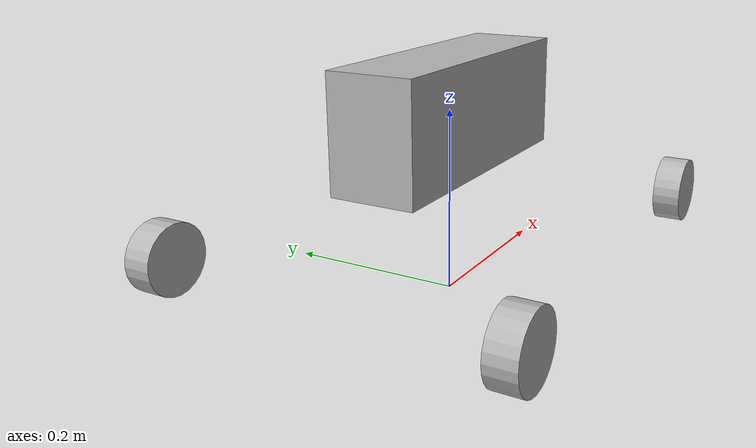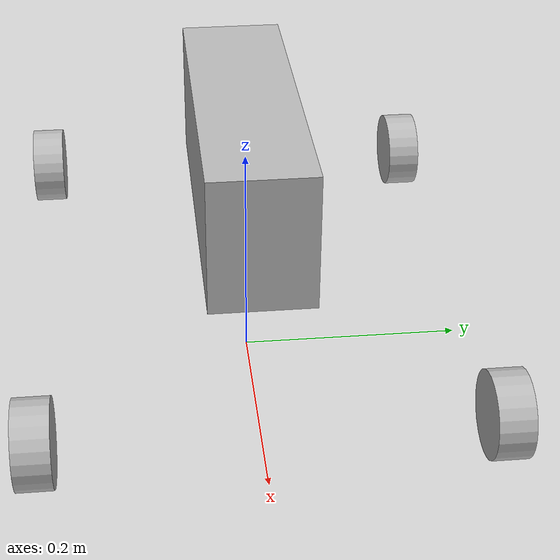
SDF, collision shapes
<sdf version="1.8">
  <model name="MR-Buggy3">
    <pose>0 0 0.08 0 0 0</pose> <!-- Original: 0 0 .04 0 0 0 -->
    <self_collide>false</self_collide>
    <static>false</static>
    <link name="MR-Buggy3/Base">
      <inertial>
        <pose>0 0 0 0 0 0</pose>
        <mass>3.0</mass>
        <inertia>
          <ixx>0.0054</ixx>
          <ixy>0</ixy>
          <ixz>0</ixz>
          <iyy>0.0252</iyy>
          <iyz>0</iyz>
          <izz>0.0252</izz>
        </inertia>
      </inertial>
      <visual name="MR-Buggy3/BaseVisual">
        <pose>0.2742 0 -0.023 -0.036 0 1.5707</pose> <!-- Original: .1371 0 -.0115 -0.018 0 1.5707 -->
        <geometry>
          <mesh>
            <scale>2 2 2</scale>
            <uri>model://MR-Buggy3/meshes/BaseReduced.dae</uri>
          </mesh>
        </geometry>
      </visual>
      <visual name="MR-Buggy3/TopVisual">
        <pose>0.2742 0 -0.023 -0.036 0 1.5707</pose> <!-- Original: .1371 0 -.0115 -0.018 0 1.5707 -->
        <geometry>
          <mesh>
            <scale>2 2 2</scale>
            <uri>model://MR-Buggy3/meshes/TopReduced.dae</uri>
          </mesh>
        </geometry>
      </visual>
      <collision name="MR-Buggy3/BaseCollision">
        <pose>0 0 0.12 0 0 0</pose> <!-- Original: 0 0 .06 0 0 0 -->
        <geometry>
          <box>
            <size>.3 .09 .12</size>
          </box>
        </geometry>
      </collision>
      <sensor name="NPUSim/Camera" type="camera">
        <pose>.16 0 .3 0 0.5 0</pose>
        <always_on>1</always_on>
        <update_rate>10</update_rate>
        <camera>
          <horizontal_fov>1.5</horizontal_fov>
          <image>
            <width>300</width>
            <height>300</height>
            <format>R8G8B8</format>
          </image>
          <clip>
            <near>0.1</near>
            <far>1000</far>
          </clip>
        </camera>
        <topic>NPU/image_sim</topic>
        <enable_metrics>true</enable_metrics>
      </sensor>
    </link>
    <link name="MR-Buggy3/FrontRightWheel">
      <pose relative_to="MR-Buggy3/FrontRightWheelJoint">0 0 0 0 0 0</pose>
      <inertial>
        <mass>.05</mass>
        <inertia>
          <ixx>0.00003331</ixx>
          <ixy>0</ixy>
          <ixz>0</ixz>
          <iyy>0.0000204</iyy>
          <iyz>0</iyz>
          <izz>0.0000204</izz>
        </inertia>
      </inertial>
      <gravity>true</gravity>
      <velocity_decay/>
      <visual name="MR-Buggy3/FrontRightWheelVisual">
        <pose>0 0 0 0 0 0</pose>
        <geometry>
          <mesh>
            <scale>2 2 2</scale>
            <uri>model://MR-Buggy3/meshes/Wheel.dae</uri>
          </mesh>
        </geometry>
      </visual>
      <collision name="MR-Buggy3/FrontRightWheelCollision">
        <pose>0 .015 0 -1.5707 0 0</pose>
        <geometry>
          <cylinder>
            <length>0.03</length>
            <radius>0.0365</radius>
          </cylinder>
        </geometry>
        <surface>
          <friction>
            <ode>
              <mu>0.5</mu>
              <mu2>1.0</mu2>
              <fdir1>0 0 1</fdir1>
            </ode>
          </friction>
        </surface>
      </collision>
    </link>
    <link name="MR-Buggy3/FrontRightWheelSteering">
      <pose relative_to="MR-Buggy3/FrontRightWheelSteeringJoint">0 0 0 0 0 0</pose>
      <inertial>
        <mass>0.005</mass>
        <inertia>
          <ixx>0.0000018</ixx>
          <iyy>0.0000018</iyy>
          <izz>0.0000018</izz>
        </inertia>
      </inertial>
    </link>
    <link name="MR-Buggy3/FrontLeftWheel">
      <pose relative_to="MR-Buggy3/FrontLeftWheelJoint">0 0 0 0 0 0</pose>
      <inertial>
        <mass>.05</mass>
        <inertia>
          <ixx>0.00003331</ixx>
          <ixy>0</ixy>
          <ixz>0</ixz>
          <iyy>0.0000204</iyy>
          <iyz>0</iyz>
          <izz>0.0000204</izz>
        </inertia>
      </inertial>
      <gravity>true</gravity>
      <velocity_decay/>
      <visual name="MR-Buggy3/FrontLeftWheelVisual">
        <pose>0 0 0 0 0 3.14159</pose>
        <geometry>
          <mesh>
            <scale>2 2 2</scale>
            <uri>model://MR-Buggy3/meshes/Wheel.dae</uri>
          </mesh>
        </geometry>
      </visual>
      <collision name="MR-Buggy3/FrontLeftWheelCollision">
        <pose>0 -.015 0 -1.5707 0 0</pose>
        <geometry>
          <cylinder>
            <length>0.03</length>
            <radius>0.0365</radius>
          </cylinder>
        </geometry>
        <surface>
          <friction>
            <ode>
              <mu>0.5</mu>
              <mu2>1.0</mu2>
              <fdir1>0 0 1</fdir1>
            </ode>
          </friction>
        </surface>
      </collision>
    </link>
    <link name="MR-Buggy3/FrontLeftWheelSteering">
      <pose relative_to="MR-Buggy3/FrontLeftWheelSteeringJoint">0 0 0 0 0 0</pose>
      <inertial>
        <mass>0.005</mass>
        <inertia>
          <ixx>0.0000018</ixx>
          <iyy>0.0000018</iyy>
          <izz>0.0000018</izz>
        </inertia>
      </inertial>
    </link>
    <link name="MR-Buggy3/RearRightWheel">
      <pose relative_to="MR-Buggy3/RearRightWheelJoint">0 0 0 0 0 0</pose>
      <inertial>
        <mass>.05</mass>
        <inertia>
          <ixx>0.00003331</ixx>
          <ixy>0</ixy>
          <ixz>0</ixz>
          <iyy>0.0000204</iyy>
          <iyz>0</iyz>
          <izz>0.0000204</izz>
        </inertia>
      </inertial>
      <gravity>true</gravity>
      <velocity_decay/>
      <visual name="MR-Buggy3/RearRightWheelVisual">
        <pose>0 0 0 0 0 0</pose>
        <geometry>
          <mesh>
            <scale>2 2 2</scale>
            <uri>model://MR-Buggy3/meshes/Wheel.dae</uri>
          </mesh>
        </geometry>
      </visual>
      <collision name="MR-Buggy3/RearRightWheelCollision">
        <pose>0 .015 0 -1.5707 0 0</pose>
        <geometry>
          <cylinder>
            <length>0.03</length>
            <radius>0.0365</radius>
          </cylinder>
        </geometry>
        <surface>
          <friction>
            <ode>
              <mu>0.5</mu>
              <mu2>1.0</mu2>
              <fdir1>0 0 1</fdir1>
            </ode>
          </friction>
        </surface>
      </collision>
    </link>
    <link name="MR-Buggy3/RearLeftWheel">
      <pose relative_to="MR-Buggy3/RearLeftWheelJoint">0 0 0 0 0 0</pose>
      <inertial>
        <mass>.05</mass>
        <inertia>
          <ixx>0.00003331</ixx>
          <ixy>0</ixy>
          <ixz>0</ixz>
          <iyy>0.0000204</iyy>
          <iyz>0</iyz>
          <izz>0.0000204</izz>
        </inertia>
      </inertial>
      <gravity>true</gravity>
      <velocity_decay/>
      <visual name="MR-Buggy3/RearLeftWheelVisual">
        <pose>0 0 0 0 0 3.14159</pose>
        <geometry>
          <mesh>
            <scale>2 2 2</scale>
            <uri>model://MR-Buggy3/meshes/Wheel.dae</uri>
          </mesh>
        </geometry>
      </visual>
      <collision name="MR-Buggy3/RearLeftWheelCollision">
        <pose>0 -.015 0 -1.5707 0 0</pose>
        <geometry>
          <cylinder>
            <length>0.03</length>
            <radius>0.0365</radius>
          </cylinder>
        </geometry>
        <surface>
          <friction>
            <ode>
              <mu>0.5</mu>
              <mu2>1.0</mu2>
              <fdir1>0 0 1</fdir1>
            </ode>
          </friction>
        </surface>
      </collision>
    </link>
    <joint name="MR-Buggy3/FrontRightWheelSteeringJoint" type="revolute">
      <parent>MR-Buggy3/Base</parent>
      <child>MR-Buggy3/FrontRightWheelSteering</child>
      <pose relative_to="MR-Buggy3/Base">0.224 -0.2 0 0 0 0</pose>
      <axis>
        <xyz>0 0 1</xyz>
        <limit>
          <lower>-0.6</lower>
          <upper>0.6</upper>
          <velocity>1.0</velocity>
          <effort>25</effort>
        </limit>
        <use_parent_model_frame>1</use_parent_model_frame>
      </axis>
    </joint>
    <joint name="MR-Buggy3/FrontRightWheelJoint" type="revolute">
      <parent>MR-Buggy3/FrontRightWheelSteering</parent>
      <child>MR-Buggy3/FrontRightWheel</child>
      <pose relative_to="MR-Buggy3/FrontRightWheelSteeringJoint">0 0 0 0 0 0</pose>
      <axis>
        <xyz>0 1 0</xyz>
        <limit>
          <lower>-1.79769e+308</lower>
          <upper>1.79769e+308</upper>
        </limit>
        <dynamics>
          <spring_reference>0</spring_reference>
          <spring_stiffness>0</spring_stiffness>
        </dynamics>
        <use_parent_model_frame>1</use_parent_model_frame>
      </axis>
    </joint>
    <joint name="MR-Buggy3/FrontLeftWheelSteeringJoint" type="revolute">
      <parent>MR-Buggy3/Base</parent>
      <child>MR-Buggy3/FrontLeftWheelSteering</child>
      <pose relative_to="MR-Buggy3/Base">0.224 0.2 0 0 0 0</pose>
      <axis>
        <xyz>0 0 1</xyz>
        <limit>
          <lower>-0.6</lower>
          <upper>0.6</upper>
          <velocity>1.0</velocity>
          <effort>25</effort>
        </limit>
        <use_parent_model_frame>1</use_parent_model_frame>
      </axis>
    </joint>
    <joint name="MR-Buggy3/FrontLeftWheelJoint" type="revolute">
      <parent>MR-Buggy3/FrontLeftWheelSteering</parent>
      <child>MR-Buggy3/FrontLeftWheel</child>
      <pose relative_to="MR-Buggy3/FrontLeftWheelSteeringJoint">0 0 0 0 0 0</pose>
      <axis>
        <xyz>0 1 0</xyz>
        <limit>
          <lower>-1.79769e+308</lower>
          <upper>1.79769e+308</upper>
        </limit>
        <dynamics>
          <spring_reference>0</spring_reference>
          <spring_stiffness>0</spring_stiffness>
        </dynamics>
        <use_parent_model_frame>1</use_parent_model_frame>
      </axis>
    </joint>
    <joint name="MR-Buggy3/RearRightWheelJoint" type="revolute">
      <parent>MR-Buggy3/Base</parent>
      <child>MR-Buggy3/RearRightWheel</child>
      <pose relative_to="MR-Buggy3/Base">-0.227 -0.2 0 0 0 0</pose>
      <axis>
        <xyz>0 1 0</xyz>
        <limit>
          <lower>-1.79769e+308</lower>
          <upper>1.79769e+308</upper>
        </limit>
        <dynamics>
          <spring_reference>0</spring_reference>
          <spring_stiffness>0</spring_stiffness>
        </dynamics>
        <use_parent_model_frame>1</use_parent_model_frame>
      </axis>
    </joint>
    <joint name="MR-Buggy3/RearLeftWheelJoint" type="revolute">
      <parent>MR-Buggy3/Base</parent>
      <child>MR-Buggy3/RearLeftWheel</child>
      <pose relative_to="MR-Buggy3/Base">-0.227 0.2 0 0 0 0</pose>
      <axis>
        <xyz>0 1 0</xyz>
        <limit>
          <lower>-1.79769e+308</lower>
          <upper>1.79769e+308</upper>
        </limit>
        <dynamics>
          <spring_reference>0</spring_reference>
          <spring_stiffness>0</spring_stiffness>
        </dynamics>
        <use_parent_model_frame>1</use_parent_model_frame>
      </axis>
    </joint>
    <plugin
      filename="ignition-gazebo-ackermann-steering-system"
      name="ignition::gazebo::systems::AckermannSteering">
      <left_joint>MR-Buggy3/FrontLeftWheelJoint</left_joint>
      <left_joint>MR-Buggy3/RearLeftWheelJoint</left_joint>
      <right_joint>MR-Buggy3/FrontRightWheelJoint</right_joint>
      <right_joint>MR-Buggy3/FrontRightWheelJoint</right_joint>
      <left_steering_joint>MR-Buggy3/FrontLeftWheelSteeringJoint</left_steering_joint>
      <right_steering_joint>MR-Buggy3/FrontRightWheelSteeringJoint</right_steering_joint>
      <kingpin_width>.18</kingpin_width>
      <steering_limit>0.5</steering_limit>
      <wheel_base>.2255</wheel_base>
      <wheel_separation>.2</wheel_separation>
      <wheel_radius>0.0365</wheel_radius>
      <min_velocity>-100</min_velocity>
      <max_velocity>100</max_velocity>
      <min_acceleration>-5</min_acceleration>
      <max_acceleration>5</max_acceleration>
      <topic>/cmd_vel</topic>
    </plugin>
  </model>
</sdf>
